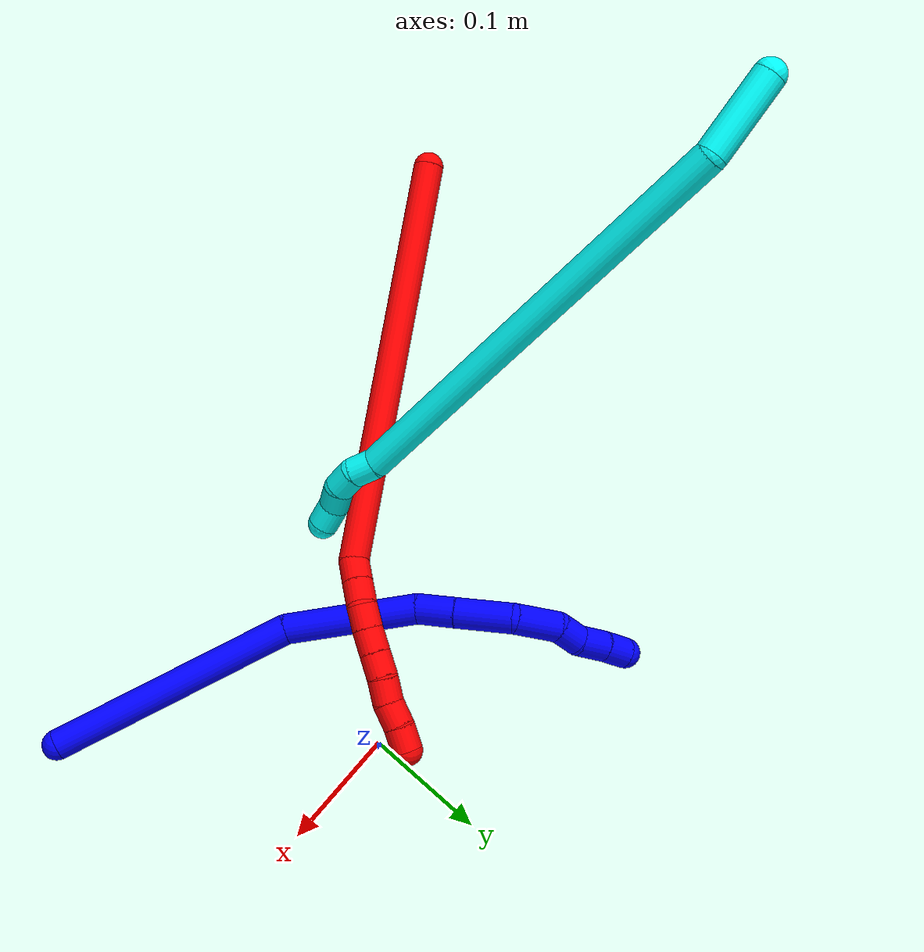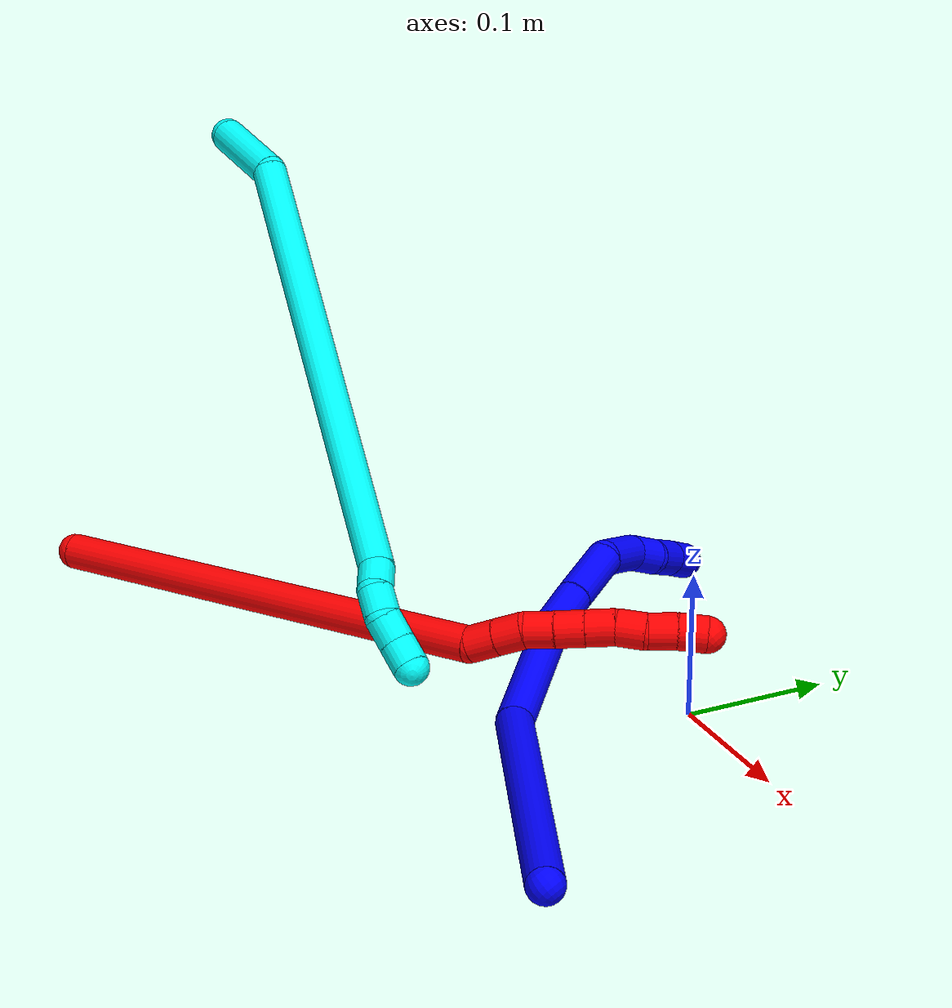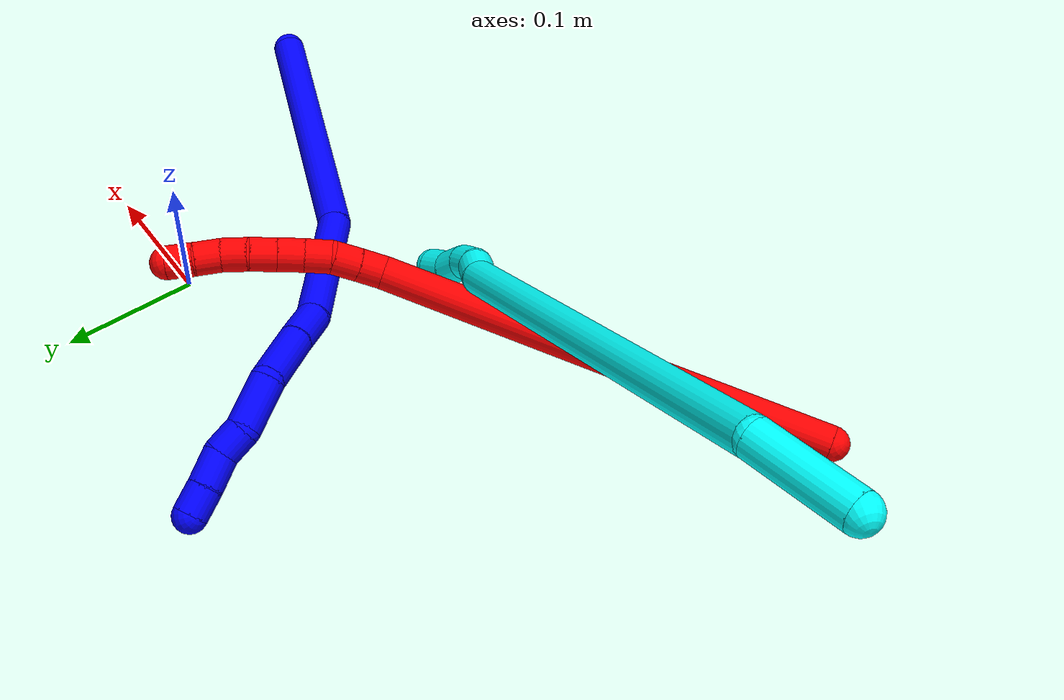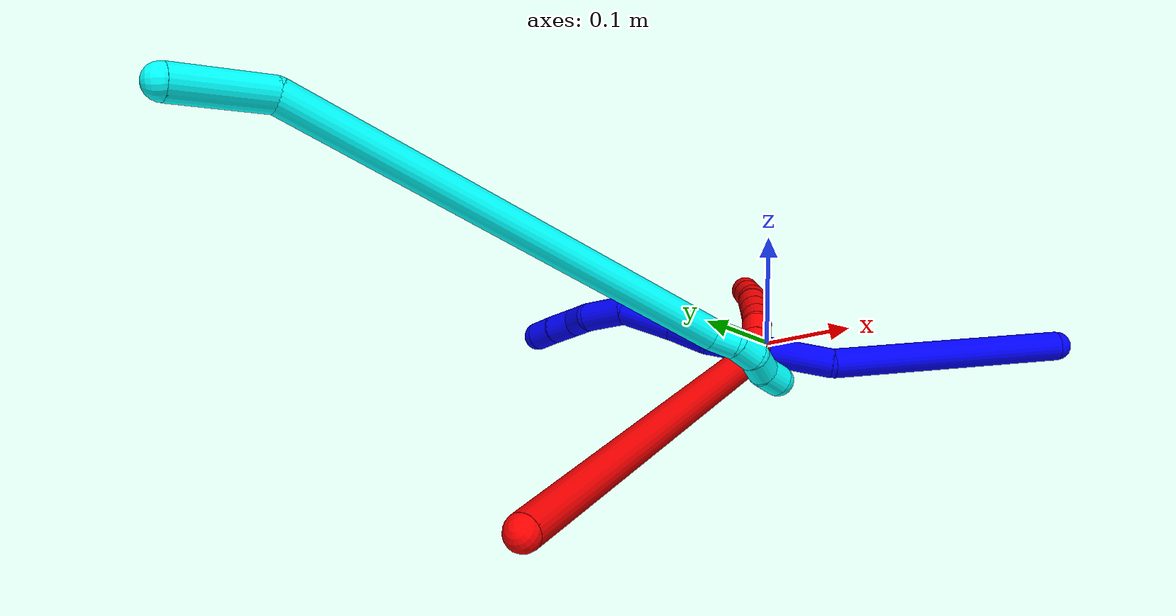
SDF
<sdf version="1.7">
 <world name="default">
  <plugin name="TubeGeneratorPlugin" filename="libtube_generator_plugin.so"/>
  <model name="photoneo_s_sensor">
   <static>1</static>
   <pose>0 0 2 1.57079 1.57079 3.14159</pose>
   <link name="link">
    <inertial><mass>0.1</mass></inertial>
    <sensor name="sensor" type="depth">
     <update_rate>30</update_rate>
     <camera>
      <horizontal_fov>1.22</horizontal_fov>
      <image><width>1920</width><height>1200</height><format>B8G8R8</format></image>
      <clip><near>0.1</near><far>4</far></clip>
      <depth_camera><output>points</output></depth_camera>
     </camera>
     <plugin name="camera_plugin" filename="libgazebo_ros_depth_camera.so">
      <baseline>0.2</baseline>
      <alwaysOn>1</alwaysOn>
      <updateRate>0.0</updateRate>
      <cameraName>camera_ir</cameraName>
      <imageTopicName>/camera/color/image_raw</imageTopicName>
      <cameraInfoTopicName>/camera/color/camera_info</cameraInfoTopicName>
      <depthImageTopicName>/camera/depth/image_raw</depthImageTopicName>
      <depthImageCameraInfoTopicName>/camera/depth/camera_info</depthImageCameraInfoTopicName>
      <pointCloudTopicName>/camera/depth/points</pointCloudTopicName>
      <frameName>fr_optical</frameName>
      <pointCloudCutoff>0.1</pointCloudCutoff>
      <pointCloudCutoffMax>2.0</pointCloudCutoffMax>
      <distortionK1>0</distortionK1>
      <distortionK2>0</distortionK2>
      <distortionK3>0</distortionK3>
      <distortionT1>0</distortionT1>
      <distortionT2>0</distortionT2>
      <CxPrime>0</CxPrime>
      <Cx>0</Cx>
      <Cy>0</Cy>
      <focalLength>0</focalLength>
      <hackBaseline>0</hackBaseline>
     </plugin>
    </sensor>
   </link>
  </model>
  <gravity>0 0 -9.8</gravity>
  <magnetic_field>6e-06 2.3e-05 -4.2e-05</magnetic_field>
  <atmosphere type="adiabatic"/>
  <physics name="default_physics" default="0" type="ode">
   <max_step_size>0.003</max_step_size>
   <real_time_factor>1</real_time_factor>
   <real_time_update_rate>1000</real_time_update_rate>
   <max_contacts>10000</max_contacts>
   <ode>
    <solver>
     <type>quick</type>
     <iters>100</iters>
     <sor>1.3</sor>
     <use_dynamic_moi_rescaling>0</use_dynamic_moi_rescaling>
    </solver>
    <constraints>
     <contact_max_correcting_vel>0</contact_max_correcting_vel>
     <contact_surface_layer>0.001</contact_surface_layer>
     <cfm>0</cfm>
     <erp>0.2</erp>
    </constraints>
   </ode>
  </physics>
  <scene><ambient>0.4 0.4 0.4 1</ambient><background>0.7 0.7 0.7 1</background><shadows>0</shadows></scene>
  <audio><device>default</device></audio>
  <spherical_coordinates>
   <surface_model>EARTH_WGS84</surface_model>
   <latitude_deg>0</latitude_deg>
   <longitude_deg>0</longitude_deg>
   <elevation>0</elevation>
   <heading_deg>0</heading_deg>
  </spherical_coordinates>
  <model name="bin">
   <static>1</static>
   <link name="bottom">
    <collision name="collision-bottom">
     <pose>0 0 -0.01 0 -0 0</pose>
     <geometry><box><size>0.8 0.6 0.02</size></box></geometry>
     <surface>
      <friction><ode><mu>100</mu><mu2>100</mu2></ode></friction>
      <contact><collide_bitmask>65535</collide_bitmask></contact>
     </surface>
    </collision>
   </link>
   <link name="west_wall">
    <collision name="collision-west_wall">
     <pose>-0.41 0 0.1 0 -0 0</pose>
     <geometry><box><size>0.02 0.6 0.2</size></box></geometry>
     <surface>
      <friction><ode><mu>100</mu><mu2>100</mu2></ode></friction>
      <contact><collide_bitmask>65535</collide_bitmask></contact>
     </surface>
    </collision>
   </link>
   <link name="east_wall">
    <collision name="collision-east_wall">
     <pose>0.41 0 0.1 0 -0 0</pose>
     <geometry><box><size>0.02 0.6 0.2</size></box></geometry>
     <surface>
      <friction><ode><mu>100</mu><mu2>100</mu2></ode></friction>
      <contact><collide_bitmask>65535</collide_bitmask></contact>
     </surface>
    </collision>
   </link>
   <link name="south_wall">
    <collision name="collision-south_wall">
     <pose>0 -0.31 0.1 0 -0 0</pose>
     <geometry><box><size>0.8 0.02 0.2</size></box></geometry>
     <surface>
      <friction><ode><mu>100</mu><mu2>100</mu2></ode></friction>
      <contact><collide_bitmask>65535</collide_bitmask></contact>
     </surface>
    </collision>
   </link>
   <link name="north_wall">
    <collision name="collision-north_wall">
     <pose>0 0.31 0.1 0 -0 0</pose>
     <geometry><box><size>0.8 0.02 0.2</size></box></geometry>
     <surface>
      <friction><ode><mu>100</mu><mu2>100</mu2></ode></friction>
      <contact><collide_bitmask>65535</collide_bitmask></contact>
     </surface>
    </collision>
   </link>
  </model>
  <model name="1">
   <static>0</static>
   <link name="1">
    <collision name="collision-cylinder-e_1_1_4">
     <pose>-0.08217 0.041024 0.046794 -0.719787 -0.922612 0.369808</pose>
     <geometry><cylinder><radius>0.0125</radius><length>0.206151</length></cylinder></geometry>
     <surface>
      <friction><ode><mu>1.16</mu><mu2>1.16</mu2><slip1>0</slip1><slip2>0</slip2></ode></friction>
      <contact><ode><kp>1e+06</kp><kd>1</kd><max_vel>0</max_vel><min_depth>0.001</min_depth></ode></contact>
     </surface>
    </collision>
    <visual name="visual-cylinder-e_1_1_4">
     <pose>-0.08217 0.041024 0.046794 -0.719787 -0.922612 0.369808</pose>
     <geometry><cylinder><radius>0.0125</radius><length>0.206151</length></cylinder></geometry>
     <material><ambient>0 0 1 1</ambient></material>
    </visual>
    <collision name="collision-cylinder-e_2_4_5">
     <pose>-0.198238 0.120527 0.11332 -1.09696 -0.664848 0.415794</pose>
     <geometry><cylinder><radius>0.0125</radius><length>0.109892</length></cylinder></geometry>
     <surface>
      <friction><ode><mu>1.16</mu><mu2>1.16</mu2><slip1>0</slip1><slip2>0</slip2></ode></friction>
      <contact><ode><kp>1e+06</kp><kd>1</kd><max_vel>0</max_vel><min_depth>0.001</min_depth></ode></contact>
     </surface>
    </collision>
    <visual name="visual-cylinder-e_2_4_5">
     <pose>-0.198238 0.120527 0.11332 -1.09696 -0.664848 0.415794</pose>
     <geometry><cylinder><radius>0.0125</radius><length>0.109892</length></cylinder></geometry>
     <material><ambient>0 0 1 1</ambient></material>
    </visual>
    <collision name="collision-cylinder-e_3_5_6">
     <pose>-0.238929 0.172947 0.136931 -1.29941 -0.438865 0.335691</pose>
     <geometry><cylinder><radius>0.0125</radius><length>0.031972</length></cylinder></geometry>
     <surface>
      <friction><ode><mu>1.16</mu><mu2>1.16</mu2><slip1>0</slip1><slip2>0</slip2></ode></friction>
      <contact><ode><kp>1e+06</kp><kd>1</kd><max_vel>0</max_vel><min_depth>0.001</min_depth></ode></contact>
     </surface>
    </collision>
    <visual name="visual-cylinder-e_3_5_6">
     <pose>-0.238929 0.172947 0.136931 -1.29941 -0.438865 0.335691</pose>
     <geometry><cylinder><radius>0.0125</radius><length>0.031972</length></cylinder></geometry>
     <material><ambient>0 0 1 1</ambient></material>
    </visual>
    <collision name="collision-cylinder-e_4_6_7">
     <pose>-0.256749 0.206988 0.145868 -1.32429 -0.488971 0.384163</pose>
     <geometry><cylinder><radius>0.0125</radius><length>0.046955</length></cylinder></geometry>
     <surface>
      <friction><ode><mu>1.16</mu><mu2>1.16</mu2><slip1>0</slip1><slip2>0</slip2></ode></friction>
      <contact><ode><kp>1e+06</kp><kd>1</kd><max_vel>0</max_vel><min_depth>0.001</min_depth></ode></contact>
     </surface>
    </collision>
    <visual name="visual-cylinder-e_4_6_7">
     <pose>-0.256749 0.206988 0.145868 -1.32429 -0.488971 0.384163</pose>
     <geometry><cylinder><radius>0.0125</radius><length>0.046955</length></cylinder></geometry>
     <material><ambient>0 0 1 1</ambient></material>
    </visual>
    <collision name="collision-cylinder-e_5_7_8">
     <pose>-0.281722 0.239792 0.147899 -1.80468 -0.818156 1.00408</pose>
     <geometry><cylinder><radius>0.0125</radius><length>0.038211</length></cylinder></geometry>
     <surface>
      <friction><ode><mu>1.16</mu><mu2>1.16</mu2><slip1>0</slip1><slip2>0</slip2></ode></friction>
      <contact><ode><kp>1e+06</kp><kd>1</kd><max_vel>0</max_vel><min_depth>0.001</min_depth></ode></contact>
     </surface>
    </collision>
    <visual name="visual-cylinder-e_5_7_8">
     <pose>-0.281722 0.239792 0.147899 -1.80468 -0.818156 1.00408</pose>
     <geometry><cylinder><radius>0.0125</radius><length>0.038211</length></cylinder></geometry>
     <material><ambient>0 0 1 1</ambient></material>
    </visual>
    <collision name="collision-cylinder-e_6_8_9">
     <pose>-0.301549 0.259574 0.139515 -2.2187 -0.585205 1.08939</pose>
     <geometry><cylinder><radius>0.0125</radius><length>0.021298</length></cylinder></geometry>
     <surface>
      <friction><ode><mu>1.16</mu><mu2>1.16</mu2><slip1>0</slip1><slip2>0</slip2></ode></friction>
      <contact><ode><kp>1e+06</kp><kd>1</kd><max_vel>0</max_vel><min_depth>0.001</min_depth></ode></contact>
     </surface>
    </collision>
    <visual name="visual-cylinder-e_6_8_9">
     <pose>-0.301549 0.259574 0.139515 -2.2187 -0.585205 1.08939</pose>
     <geometry><cylinder><radius>0.0125</radius><length>0.021298</length></cylinder></geometry>
     <material><ambient>0 0 1 1</ambient></material>
    </visual>
    <collision name="collision-cylinder-e_7_9_10">
     <pose>-0.316824 0.273809 0.130965 -1.99043 -0.875473 1.24973</pose>
     <geometry><cylinder><radius>0.0125</radius><length>0.024466</length></cylinder></geometry>
     <surface>
      <friction><ode><mu>1.16</mu><mu2>1.16</mu2><slip1>0</slip1><slip2>0</slip2></ode></friction>
      <contact><ode><kp>1e+06</kp><kd>1</kd><max_vel>0</max_vel><min_depth>0.001</min_depth></ode></contact>
     </surface>
    </collision>
    <visual name="visual-cylinder-e_7_9_10">
     <pose>-0.316824 0.273809 0.130965 -1.99043 -0.875473 1.24973</pose>
     <geometry><cylinder><radius>0.0125</radius><length>0.024466</length></cylinder></geometry>
     <material><ambient>0 0 1 1</ambient></material>
    </visual>
    <collision name="collision-cylinder-e_8_10_2">
     <pose>-0.33399 0.287126 0.12424 -2.09135 -0.830587 1.30107</pose>
     <geometry><cylinder><radius>0.0125</radius><length>0.021056</length></cylinder></geometry>
     <surface>
      <friction><ode><mu>1.16</mu><mu2>1.16</mu2><slip1>0</slip1><slip2>0</slip2></ode></friction>
      <contact><ode><kp>1e+06</kp><kd>1</kd><max_vel>0</max_vel><min_depth>0.001</min_depth></ode></contact>
     </surface>
    </collision>
    <visual name="visual-cylinder-e_8_10_2">
     <pose>-0.33399 0.287126 0.12424 -2.09135 -0.830587 1.30107</pose>
     <geometry><cylinder><radius>0.0125</radius><length>0.021056</length></cylinder></geometry>
     <material><ambient>0 0 1 1</ambient></material>
    </visual>
    <collision name="collision-sphere-2">
     <pose>-0.341763 0.293286 0.120709 0 -0 0</pose>
     <geometry><sphere><radius>0.0125</radius></sphere></geometry>
     <surface>
      <friction><ode><mu>1.16</mu><mu2>1.16</mu2><slip1>0</slip1><slip2>0</slip2></ode></friction>
      <contact><ode><kp>1e+06</kp><kd>1</kd><max_vel>0</max_vel><min_depth>0.001</min_depth></ode></contact>
     </surface>
    </collision>
    <visual name="visual-sphere-2">
     <pose>-0.341763 0.293286 0.120709 0 -0 0</pose>
     <geometry><sphere><radius>0.0125</radius></sphere></geometry>
     <material><ambient>0 0 1 1</ambient></material>
    </visual>
    <collision name="collision-sphere-10">
     <pose>-0.326217 0.280966 0.127772 0 -0 0</pose>
     <geometry><sphere><radius>0.0125</radius></sphere></geometry>
     <surface>
      <friction><ode><mu>1.16</mu><mu2>1.16</mu2><slip1>0</slip1><slip2>0</slip2></ode></friction>
      <contact><ode><kp>1e+06</kp><kd>1</kd><max_vel>0</max_vel><min_depth>0.001</min_depth></ode></contact>
     </surface>
    </collision>
    <visual name="visual-sphere-10">
     <pose>-0.326217 0.280966 0.127772 0 -0 0</pose>
     <geometry><sphere><radius>0.0125</radius></sphere></geometry>
     <material><ambient>0 0 1 1</ambient></material>
    </visual>
    <collision name="collision-sphere-9">
     <pose>-0.307431 0.266652 0.134157 0 -0 0</pose>
     <geometry><sphere><radius>0.0125</radius></sphere></geometry>
     <surface>
      <friction><ode><mu>1.16</mu><mu2>1.16</mu2><slip1>0</slip1><slip2>0</slip2></ode></friction>
      <contact><ode><kp>1e+06</kp><kd>1</kd><max_vel>0</max_vel><min_depth>0.001</min_depth></ode></contact>
     </surface>
    </collision>
    <visual name="visual-sphere-9">
     <pose>-0.307431 0.266652 0.134157 0 -0 0</pose>
     <geometry><sphere><radius>0.0125</radius></sphere></geometry>
     <material><ambient>0 0 1 1</ambient></material>
    </visual>
    <collision name="collision-sphere-4">
     <pose>-0.16434 0.082048 0.093589 0 -0 0</pose>
     <geometry><sphere><radius>0.0125</radius></sphere></geometry>
     <surface>
      <friction><ode><mu>1.16</mu><mu2>1.16</mu2><slip1>0</slip1><slip2>0</slip2></ode></friction>
      <contact><ode><kp>1e+06</kp><kd>1</kd><max_vel>0</max_vel><min_depth>0.001</min_depth></ode></contact>
     </surface>
    </collision>
    <visual name="visual-sphere-4">
     <pose>-0.16434 0.082048 0.093589 0 -0 0</pose>
     <geometry><sphere><radius>0.0125</radius></sphere></geometry>
     <material><ambient>0 0 1 1</ambient></material>
    </visual>
    <collision name="collision-sphere-1">
     <geometry><sphere><radius>0.0125</radius></sphere></geometry>
     <surface>
      <friction><ode><mu>1.16</mu><mu2>1.16</mu2><slip1>0</slip1><slip2>0</slip2></ode></friction>
      <contact><ode><kp>1e+06</kp><kd>1</kd><max_vel>0</max_vel><min_depth>0.001</min_depth></ode></contact>
     </surface>
    </collision>
    <visual name="visual-sphere-1">
     <geometry><sphere><radius>0.0125</radius></sphere></geometry>
     <material><ambient>0 0 1 1</ambient></material>
    </visual>
    <collision name="collision-sphere-8">
     <pose>-0.295667 0.252496 0.144872 0 -0 0</pose>
     <geometry><sphere><radius>0.0125</radius></sphere></geometry>
     <surface>
      <friction><ode><mu>1.16</mu><mu2>1.16</mu2><slip1>0</slip1><slip2>0</slip2></ode></friction>
      <contact><ode><kp>1e+06</kp><kd>1</kd><max_vel>0</max_vel><min_depth>0.001</min_depth></ode></contact>
     </surface>
    </collision>
    <visual name="visual-sphere-8">
     <pose>-0.295667 0.252496 0.144872 0 -0 0</pose>
     <geometry><sphere><radius>0.0125</radius></sphere></geometry>
     <material><ambient>0 0 1 1</ambient></material>
    </visual>
    <collision name="collision-sphere-5">
     <pose>-0.232136 0.159006 0.133052 0 -0 0</pose>
     <geometry><sphere><radius>0.0125</radius></sphere></geometry>
     <surface>
      <friction><ode><mu>1.16</mu><mu2>1.16</mu2><slip1>0</slip1><slip2>0</slip2></ode></friction>
      <contact><ode><kp>1e+06</kp><kd>1</kd><max_vel>0</max_vel><min_depth>0.001</min_depth></ode></contact>
     </surface>
    </collision>
    <visual name="visual-sphere-5">
     <pose>-0.232136 0.159006 0.133052 0 -0 0</pose>
     <geometry><sphere><radius>0.0125</radius></sphere></geometry>
     <material><ambient>0 0 1 1</ambient></material>
    </visual>
    <collision name="collision-sphere-6">
     <pose>-0.245721 0.186888 0.14081 0 -0 0</pose>
     <geometry><sphere><radius>0.0125</radius></sphere></geometry>
     <surface>
      <friction><ode><mu>1.16</mu><mu2>1.16</mu2><slip1>0</slip1><slip2>0</slip2></ode></friction>
      <contact><ode><kp>1e+06</kp><kd>1</kd><max_vel>0</max_vel><min_depth>0.001</min_depth></ode></contact>
     </surface>
    </collision>
    <visual name="visual-sphere-6">
     <pose>-0.245721 0.186888 0.14081 0 -0 0</pose>
     <geometry><sphere><radius>0.0125</radius></sphere></geometry>
     <material><ambient>0 0 1 1</ambient></material>
    </visual>
    <collision name="collision-sphere-7">
     <pose>-0.267777 0.227088 0.150926 0 -0 0</pose>
     <geometry><sphere><radius>0.0125</radius></sphere></geometry>
     <surface>
      <friction><ode><mu>1.16</mu><mu2>1.16</mu2><slip1>0</slip1><slip2>0</slip2></ode></friction>
      <contact><ode><kp>1e+06</kp><kd>1</kd><max_vel>0</max_vel><min_depth>0.001</min_depth></ode></contact>
     </surface>
    </collision>
    <visual name="visual-sphere-7">
     <pose>-0.267777 0.227088 0.150926 0 -0 0</pose>
     <geometry><sphere><radius>0.0125</radius></sphere></geometry>
     <material><ambient>0 0 1 1</ambient></material>
    </visual>
    <inertial>
     <pose>-0.18078 0.128773 0.095539 0 -0 0</pose>
     <mass>0.5</mass>
     <inertia>
      <ixx>0.000696</ixx>
      <ixy>0</ixy>
      <ixz>0</ixz>
      <iyy>0.000974</iyy>
      <iyz>0</iyz>
      <izz>0.00029</izz>
     </inertia>
    </inertial>
   </link>
   <pose>0.17225 -0.194441 0.0153 0.578734 -0.661907 -0.294884</pose>
  </model>
  <model name="2">
   <static>0</static>
   <link name="2">
    <collision name="collision-cylinder-e_1_1_4">
     <pose>0.10442 0.050529 -0.124243 -2.75533 0.66151 -2.10613</pose>
     <geometry><cylinder><radius>0.0125</radius><length>0.33996</length></cylinder></geometry>
     <surface>
      <friction><ode><mu>1.16</mu><mu2>1.16</mu2><slip1>0</slip1><slip2>0</slip2></ode></friction>
      <contact><ode><kp>1e+06</kp><kd>1</kd><max_vel>0</max_vel><min_depth>0.001</min_depth></ode></contact>
     </surface>
    </collision>
    <visual name="visual-cylinder-e_1_1_4">
     <pose>0.10442 0.050529 -0.124243 -2.75533 0.66151 -2.10613</pose>
     <geometry><cylinder><radius>0.0125</radius><length>0.33996</length></cylinder></geometry>
     <material><ambient>1 0 0 1</ambient></material>
    </visual>
    <collision name="collision-cylinder-e_2_4_5">
     <pose>0.214881 0.107752 -0.252828 -2.14608 0.647938 -1.10705</pose>
     <geometry><cylinder><radius>0.0125</radius><length>0.020016</length></cylinder></geometry>
     <surface>
      <friction><ode><mu>1.16</mu><mu2>1.16</mu2><slip1>0</slip1><slip2>0</slip2></ode></friction>
      <contact><ode><kp>1e+06</kp><kd>1</kd><max_vel>0</max_vel><min_depth>0.001</min_depth></ode></contact>
     </surface>
    </collision>
    <visual name="visual-cylinder-e_2_4_5">
     <pose>0.214881 0.107752 -0.252828 -2.14608 0.647938 -1.10705</pose>
     <geometry><cylinder><radius>0.0125</radius><length>0.020016</length></cylinder></geometry>
     <material><ambient>1 0 0 1</ambient></material>
    </visual>
    <collision name="collision-cylinder-e_3_5_6">
     <pose>0.226832 0.121197 -0.261609 -2.15263 0.631689 -1.08979</pose>
     <geometry><cylinder><radius>0.0125</radius><length>0.02002</length></cylinder></geometry>
     <surface>
      <friction><ode><mu>1.16</mu><mu2>1.16</mu2><slip1>0</slip1><slip2>0</slip2></ode></friction>
      <contact><ode><kp>1e+06</kp><kd>1</kd><max_vel>0</max_vel><min_depth>0.001</min_depth></ode></contact>
     </surface>
    </collision>
    <visual name="visual-cylinder-e_3_5_6">
     <pose>0.226832 0.121197 -0.261609 -2.15263 0.631689 -1.08979</pose>
     <geometry><cylinder><radius>0.0125</radius><length>0.02002</length></cylinder></geometry>
     <material><ambient>1 0 0 1</ambient></material>
    </visual>
    <collision name="collision-cylinder-e_4_6_7">
     <pose>0.236731 0.134431 -0.272535 -2.35625 0.410148 -0.930801</pose>
     <geometry><cylinder><radius>0.0125</radius><length>0.020003</length></cylinder></geometry>
     <surface>
      <friction><ode><mu>1.16</mu><mu2>1.16</mu2><slip1>0</slip1><slip2>0</slip2></ode></friction>
      <contact><ode><kp>1e+06</kp><kd>1</kd><max_vel>0</max_vel><min_depth>0.001</min_depth></ode></contact>
     </surface>
    </collision>
    <visual name="visual-cylinder-e_4_6_7">
     <pose>0.236731 0.134431 -0.272535 -2.35625 0.410148 -0.930801</pose>
     <geometry><cylinder><radius>0.0125</radius><length>0.020003</length></cylinder></geometry>
     <material><ambient>1 0 0 1</ambient></material>
    </visual>
    <collision name="collision-cylinder-e_5_7_8">
     <pose>0.244394 0.147831 -0.285242 -2.30343 0.376343 -0.807919</pose>
     <geometry><cylinder><radius>0.0125</radius><length>0.02</length></cylinder></geometry>
     <surface>
      <friction><ode><mu>1.16</mu><mu2>1.16</mu2><slip1>0</slip1><slip2>0</slip2></ode></friction>
      <contact><ode><kp>1e+06</kp><kd>1</kd><max_vel>0</max_vel><min_depth>0.001</min_depth></ode></contact>
     </surface>
    </collision>
    <visual name="visual-cylinder-e_5_7_8">
     <pose>0.244394 0.147831 -0.285242 -2.30343 0.376343 -0.807919</pose>
     <geometry><cylinder><radius>0.0125</radius><length>0.02</length></cylinder></geometry>
     <material><ambient>1 0 0 1</ambient></material>
    </visual>
    <collision name="collision-cylinder-e_6_8_9">
     <pose>0.251638 0.161665 -0.297737 -2.30732 0.364887 -0.789015</pose>
     <geometry><cylinder><radius>0.0125</radius><length>0.020001</length></cylinder></geometry>
     <surface>
      <friction><ode><mu>1.16</mu><mu2>1.16</mu2><slip1>0</slip1><slip2>0</slip2></ode></friction>
      <contact><ode><kp>1e+06</kp><kd>1</kd><max_vel>0</max_vel><min_depth>0.001</min_depth></ode></contact>
     </surface>
    </collision>
    <visual name="visual-cylinder-e_6_8_9">
     <pose>0.251638 0.161665 -0.297737 -2.30732 0.364887 -0.789015</pose>
     <geometry><cylinder><radius>0.0125</radius><length>0.020001</length></cylinder></geometry>
     <material><ambient>1 0 0 1</ambient></material>
    </visual>
    <collision name="collision-cylinder-e_7_9_10">
     <pose>0.258233 0.174359 -0.311595 -2.49087 0.307448 -0.861131</pose>
     <geometry><cylinder><radius>0.0125</radius><length>0.02</length></cylinder></geometry>
     <surface>
      <friction><ode><mu>1.16</mu><mu2>1.16</mu2><slip1>0</slip1><slip2>0</slip2></ode></friction>
      <contact><ode><kp>1e+06</kp><kd>1</kd><max_vel>0</max_vel><min_depth>0.001</min_depth></ode></contact>
     </surface>
    </collision>
    <visual name="visual-cylinder-e_7_9_10">
     <pose>0.258233 0.174359 -0.311595 -2.49087 0.307448 -0.861131</pose>
     <geometry><cylinder><radius>0.0125</radius><length>0.02</length></cylinder></geometry>
     <material><ambient>1 0 0 1</ambient></material>
    </visual>
    <collision name="collision-cylinder-e_8_10_11">
     <pose>0.263245 0.187548 -0.325588 -2.28358 0.199904 -0.431658</pose>
     <geometry><cylinder><radius>0.0125</radius><length>0.02</length></cylinder></geometry>
     <surface>
      <friction><ode><mu>1.16</mu><mu2>1.16</mu2><slip1>0</slip1><slip2>0</slip2></ode></friction>
      <contact><ode><kp>1e+06</kp><kd>1</kd><max_vel>0</max_vel><min_depth>0.001</min_depth></ode></contact>
     </surface>
    </collision>
    <visual name="visual-cylinder-e_8_10_11">
     <pose>0.263245 0.187548 -0.325588 -2.28358 0.199904 -0.431658</pose>
     <geometry><cylinder><radius>0.0125</radius><length>0.02</length></cylinder></geometry>
     <material><ambient>1 0 0 1</ambient></material>
    </visual>
    <collision name="collision-cylinder-e_9_11_2">
     <pose>0.267431 0.201378 -0.339346 -2.42388 0.221802 -0.577177</pose>
     <geometry><cylinder><radius>0.0125</radius><length>0.02</length></cylinder></geometry>
     <surface>
      <friction><ode><mu>1.16</mu><mu2>1.16</mu2><slip1>0</slip1><slip2>0</slip2></ode></friction>
      <contact><ode><kp>1e+06</kp><kd>1</kd><max_vel>0</max_vel><min_depth>0.001</min_depth></ode></contact>
     </surface>
    </collision>
    <visual name="visual-cylinder-e_9_11_2">
     <pose>0.267431 0.201378 -0.339346 -2.42388 0.221802 -0.577177</pose>
     <geometry><cylinder><radius>0.0125</radius><length>0.02</length></cylinder></geometry>
     <material><ambient>1 0 0 1</ambient></material>
    </visual>
    <collision name="collision-sphere-2">
     <pose>0.269631 0.207793 -0.346694 0 -0 0</pose>
     <geometry><sphere><radius>0.0125</radius></sphere></geometry>
     <surface>
      <friction><ode><mu>1.16</mu><mu2>1.16</mu2><slip1>0</slip1><slip2>0</slip2></ode></friction>
      <contact><ode><kp>1e+06</kp><kd>1</kd><max_vel>0</max_vel><min_depth>0.001</min_depth></ode></contact>
     </surface>
    </collision>
    <visual name="visual-sphere-2">
     <pose>0.269631 0.207793 -0.346694 0 -0 0</pose>
     <geometry><sphere><radius>0.0125</radius></sphere></geometry>
     <material><ambient>1 0 0 1</ambient></material>
    </visual>
    <collision name="collision-sphere-11">
     <pose>0.265231 0.194962 -0.331997 0 -0 0</pose>
     <geometry><sphere><radius>0.0125</radius></sphere></geometry>
     <surface>
      <friction><ode><mu>1.16</mu><mu2>1.16</mu2><slip1>0</slip1><slip2>0</slip2></ode></friction>
      <contact><ode><kp>1e+06</kp><kd>1</kd><max_vel>0</max_vel><min_depth>0.001</min_depth></ode></contact>
     </surface>
    </collision>
    <visual name="visual-sphere-11">
     <pose>0.265231 0.194962 -0.331997 0 -0 0</pose>
     <geometry><sphere><radius>0.0125</radius></sphere></geometry>
     <material><ambient>1 0 0 1</ambient></material>
    </visual>
    <collision name="collision-sphere-10">
     <pose>0.261259 0.180133 -0.319179 0 -0 0</pose>
     <geometry><sphere><radius>0.0125</radius></sphere></geometry>
     <surface>
      <friction><ode><mu>1.16</mu><mu2>1.16</mu2><slip1>0</slip1><slip2>0</slip2></ode></friction>
      <contact><ode><kp>1e+06</kp><kd>1</kd><max_vel>0</max_vel><min_depth>0.001</min_depth></ode></contact>
     </surface>
    </collision>
    <visual name="visual-sphere-10">
     <pose>0.261259 0.180133 -0.319179 0 -0 0</pose>
     <geometry><sphere><radius>0.0125</radius></sphere></geometry>
     <material><ambient>1 0 0 1</ambient></material>
    </visual>
    <collision name="collision-sphere-9">
     <pose>0.255207 0.168586 -0.304012 0 -0 0</pose>
     <geometry><sphere><radius>0.0125</radius></sphere></geometry>
     <surface>
      <friction><ode><mu>1.16</mu><mu2>1.16</mu2><slip1>0</slip1><slip2>0</slip2></ode></friction>
      <contact><ode><kp>1e+06</kp><kd>1</kd><max_vel>0</max_vel><min_depth>0.001</min_depth></ode></contact>
     </surface>
    </collision>
    <visual name="visual-sphere-9">
     <pose>0.255207 0.168586 -0.304012 0 -0 0</pose>
     <geometry><sphere><radius>0.0125</radius></sphere></geometry>
     <material><ambient>1 0 0 1</ambient></material>
    </visual>
    <collision name="collision-sphere-4">
     <pose>0.20884 0.101057 -0.248487 0 -0 0</pose>
     <geometry><sphere><radius>0.0125</radius></sphere></geometry>
     <surface>
      <friction><ode><mu>1.16</mu><mu2>1.16</mu2><slip1>0</slip1><slip2>0</slip2></ode></friction>
      <contact><ode><kp>1e+06</kp><kd>1</kd><max_vel>0</max_vel><min_depth>0.001</min_depth></ode></contact>
     </surface>
    </collision>
    <visual name="visual-sphere-4">
     <pose>0.20884 0.101057 -0.248487 0 -0 0</pose>
     <geometry><sphere><radius>0.0125</radius></sphere></geometry>
     <material><ambient>1 0 0 1</ambient></material>
    </visual>
    <collision name="collision-sphere-1">
     <geometry><sphere><radius>0.0125</radius></sphere></geometry>
     <surface>
      <friction><ode><mu>1.16</mu><mu2>1.16</mu2><slip1>0</slip1><slip2>0</slip2></ode></friction>
      <contact><ode><kp>1e+06</kp><kd>1</kd><max_vel>0</max_vel><min_depth>0.001</min_depth></ode></contact>
     </surface>
    </collision>
    <visual name="visual-sphere-1">
     <geometry><sphere><radius>0.0125</radius></sphere></geometry>
     <material><ambient>1 0 0 1</ambient></material>
    </visual>
    <collision name="collision-sphere-8">
     <pose>0.24807 0.154744 -0.291462 0 -0 0</pose>
     <geometry><sphere><radius>0.0125</radius></sphere></geometry>
     <surface>
      <friction><ode><mu>1.16</mu><mu2>1.16</mu2><slip1>0</slip1><slip2>0</slip2></ode></friction>
      <contact><ode><kp>1e+06</kp><kd>1</kd><max_vel>0</max_vel><min_depth>0.001</min_depth></ode></contact>
     </surface>
    </collision>
    <visual name="visual-sphere-8">
     <pose>0.24807 0.154744 -0.291462 0 -0 0</pose>
     <geometry><sphere><radius>0.0125</radius></sphere></geometry>
     <material><ambient>1 0 0 1</ambient></material>
    </visual>
    <collision name="collision-sphere-5">
     <pose>0.220921 0.114448 -0.25717 0 -0 0</pose>
     <geometry><sphere><radius>0.0125</radius></sphere></geometry>
     <surface>
      <friction><ode><mu>1.16</mu><mu2>1.16</mu2><slip1>0</slip1><slip2>0</slip2></ode></friction>
      <contact><ode><kp>1e+06</kp><kd>1</kd><max_vel>0</max_vel><min_depth>0.001</min_depth></ode></contact>
     </surface>
    </collision>
    <visual name="visual-sphere-5">
     <pose>0.220921 0.114448 -0.25717 0 -0 0</pose>
     <geometry><sphere><radius>0.0125</radius></sphere></geometry>
     <material><ambient>1 0 0 1</ambient></material>
    </visual>
    <collision name="collision-sphere-6">
     <pose>0.232743 0.127946 -0.266049 0 -0 0</pose>
     <geometry><sphere><radius>0.0125</radius></sphere></geometry>
     <surface>
      <friction><ode><mu>1.16</mu><mu2>1.16</mu2><slip1>0</slip1><slip2>0</slip2></ode></friction>
      <contact><ode><kp>1e+06</kp><kd>1</kd><max_vel>0</max_vel><min_depth>0.001</min_depth></ode></contact>
     </surface>
    </collision>
    <visual name="visual-sphere-6">
     <pose>0.232743 0.127946 -0.266049 0 -0 0</pose>
     <geometry><sphere><radius>0.0125</radius></sphere></geometry>
     <material><ambient>1 0 0 1</ambient></material>
    </visual>
    <collision name="collision-sphere-7">
     <pose>0.240719 0.140917 -0.279021 0 -0 0</pose>
     <geometry><sphere><radius>0.0125</radius></sphere></geometry>
     <surface>
      <friction><ode><mu>1.16</mu><mu2>1.16</mu2><slip1>0</slip1><slip2>0</slip2></ode></friction>
      <contact><ode><kp>1e+06</kp><kd>1</kd><max_vel>0</max_vel><min_depth>0.001</min_depth></ode></contact>
     </surface>
    </collision>
    <visual name="visual-sphere-7">
     <pose>0.240719 0.140917 -0.279021 0 -0 0</pose>
     <geometry><sphere><radius>0.0125</radius></sphere></geometry>
     <material><ambient>1 0 0 1</ambient></material>
    </visual>
    <inertial>
     <pose>0.149551 0.083811 -0.178356 0 -0 0</pose>
     <mass>0.5</mass>
     <inertia>
      <ixx>-0.003534</ixx>
      <ixy>0</ixy>
      <ixz>0</ixz>
      <iyy>-1.7e-05</iyy>
      <iyz>0</iyz>
      <izz>-0.003036</izz>
     </inertia>
    </inertial>
   </link>
   <pose>-0.388501 -0.286133 0.011604 0.520782 -0.741955 -0.133765</pose>
  </model>
  <model name="3">
   <static>0</static>
   <link name="3">
    <collision name="collision-cylinder-e_1_1_4">
     <pose>0.002012 -0.015571 -0.029695 2.65864 0.059949 0.242294</pose>
     <geometry><cylinder><radius>0.0125</radius><length>0.06718</length></cylinder></geometry>
     <surface>
      <friction><ode><mu>1.16</mu><mu2>1.16</mu2><slip1>0</slip1><slip2>0</slip2></ode></friction>
      <contact><ode><kp>1e+06</kp><kd>1</kd><max_vel>0</max_vel><min_depth>0.001</min_depth></ode></contact>
     </surface>
    </collision>
    <visual name="visual-cylinder-e_1_1_4">
     <pose>0.002012 -0.015571 -0.029695 2.65864 0.059949 0.242294</pose>
     <geometry><cylinder><radius>0.0125</radius><length>0.06718</length></cylinder></geometry>
     <material><ambient>0.003922 1 0.996078 1</ambient></material>
    </visual>
    <collision name="collision-cylinder-e_2_4_5">
     <pose>0.089655 -0.083435 -0.204305 2.79528 0.507296 1.95449</pose>
     <geometry><cylinder><radius>0.0125</radius><length>0.352519</length></cylinder></geometry>
     <surface>
      <friction><ode><mu>1.16</mu><mu2>1.16</mu2><slip1>0</slip1><slip2>0</slip2></ode></friction>
      <contact><ode><kp>1e+06</kp><kd>1</kd><max_vel>0</max_vel><min_depth>0.001</min_depth></ode></contact>
     </surface>
    </collision>
    <visual name="visual-cylinder-e_2_4_5">
     <pose>0.089655 -0.083435 -0.204305 2.79528 0.507296 1.95449</pose>
     <geometry><cylinder><radius>0.0125</radius><length>0.352519</length></cylinder></geometry>
     <material><ambient>0.003922 1 0.996078 1</ambient></material>
    </visual>
    <collision name="collision-cylinder-e_3_5_6">
     <pose>0.179529 -0.135666 -0.35843 -3.13487 0.431922 -3.11096</pose>
     <geometry><cylinder><radius>0.0125</radius><length>0.020282</length></cylinder></geometry>
     <surface>
      <friction><ode><mu>1.16</mu><mu2>1.16</mu2><slip1>0</slip1><slip2>0</slip2></ode></friction>
      <contact><ode><kp>1e+06</kp><kd>1</kd><max_vel>0</max_vel><min_depth>0.001</min_depth></ode></contact>
     </surface>
    </collision>
    <visual name="visual-cylinder-e_3_5_6">
     <pose>0.179529 -0.135666 -0.35843 -3.13487 0.431922 -3.11096</pose>
     <geometry><cylinder><radius>0.0125</radius><length>0.020282</length></cylinder></geometry>
     <material><ambient>0.003922 1 0.996078 1</ambient></material>
    </visual>
    <collision name="collision-cylinder-e_4_6_7">
     <pose>0.189344 -0.139033 -0.37521 2.71631 0.590373 1.9067</pose>
     <geometry><cylinder><radius>0.0125</radius><length>0.020011</length></cylinder></geometry>
     <surface>
      <friction><ode><mu>1.16</mu><mu2>1.16</mu2><slip1>0</slip1><slip2>0</slip2></ode></friction>
      <contact><ode><kp>1e+06</kp><kd>1</kd><max_vel>0</max_vel><min_depth>0.001</min_depth></ode></contact>
     </surface>
    </collision>
    <visual name="visual-cylinder-e_4_6_7">
     <pose>0.189344 -0.139033 -0.37521 2.71631 0.590373 1.9067</pose>
     <geometry><cylinder><radius>0.0125</radius><length>0.020011</length></cylinder></geometry>
     <material><ambient>0.003922 1 0.996078 1</ambient></material>
    </visual>
    <collision name="collision-cylinder-e_5_7_8">
     <pose>0.20116 -0.14867 -0.387527 2.22351 0.674422 1.23396</pose>
     <geometry><cylinder><radius>0.0125</radius><length>0.020007</length></cylinder></geometry>
     <surface>
      <friction><ode><mu>1.16</mu><mu2>1.16</mu2><slip1>0</slip1><slip2>0</slip2></ode></friction>
      <contact><ode><kp>1e+06</kp><kd>1</kd><max_vel>0</max_vel><min_depth>0.001</min_depth></ode></contact>
     </surface>
    </collision>
    <visual name="visual-cylinder-e_5_7_8">
     <pose>0.20116 -0.14867 -0.387527 2.22351 0.674422 1.23396</pose>
     <geometry><cylinder><radius>0.0125</radius><length>0.020007</length></cylinder></geometry>
     <material><ambient>0.003922 1 0.996078 1</ambient></material>
    </visual>
    <collision name="collision-cylinder-e_6_8_2">
     <pose>0.211857 -0.160166 -0.3995 2.50983 0.461155 1.24578</pose>
     <geometry><cylinder><radius>0.0125</radius><length>0.020002</length></cylinder></geometry>
     <surface>
      <friction><ode><mu>1.16</mu><mu2>1.16</mu2><slip1>0</slip1><slip2>0</slip2></ode></friction>
      <contact><ode><kp>1e+06</kp><kd>1</kd><max_vel>0</max_vel><min_depth>0.001</min_depth></ode></contact>
     </surface>
    </collision>
    <visual name="visual-cylinder-e_6_8_2">
     <pose>0.211857 -0.160166 -0.3995 2.50983 0.461155 1.24578</pose>
     <geometry><cylinder><radius>0.0125</radius><length>0.020002</length></cylinder></geometry>
     <material><ambient>0.003922 1 0.996078 1</ambient></material>
    </visual>
    <collision name="collision-sphere-2">
     <pose>0.216307 -0.165456 -0.406727 0 -0 0</pose>
     <geometry><sphere><radius>0.0125</radius></sphere></geometry>
     <surface>
      <friction><ode><mu>1.16</mu><mu2>1.16</mu2><slip1>0</slip1><slip2>0</slip2></ode></friction>
      <contact><ode><kp>1e+06</kp><kd>1</kd><max_vel>0</max_vel><min_depth>0.001</min_depth></ode></contact>
     </surface>
    </collision>
    <visual name="visual-sphere-2">
     <pose>0.216307 -0.165456 -0.406727 0 -0 0</pose>
     <geometry><sphere><radius>0.0125</radius></sphere></geometry>
     <material><ambient>0.003922 1 0.996078 1</ambient></material>
    </visual>
    <collision name="collision-sphere-4">
     <pose>0.004025 -0.031142 -0.05939 0 -0 0</pose>
     <geometry><sphere><radius>0.0125</radius></sphere></geometry>
     <surface>
      <friction><ode><mu>1.16</mu><mu2>1.16</mu2><slip1>0</slip1><slip2>0</slip2></ode></friction>
      <contact><ode><kp>1e+06</kp><kd>1</kd><max_vel>0</max_vel><min_depth>0.001</min_depth></ode></contact>
     </surface>
    </collision>
    <visual name="visual-sphere-4">
     <pose>0.004025 -0.031142 -0.05939 0 -0 0</pose>
     <geometry><sphere><radius>0.0125</radius></sphere></geometry>
     <material><ambient>0.003922 1 0.996078 1</ambient></material>
    </visual>
    <collision name="collision-sphere-1">
     <geometry><sphere><radius>0.0125</radius></sphere></geometry>
     <surface>
      <friction><ode><mu>1.16</mu><mu2>1.16</mu2><slip1>0</slip1><slip2>0</slip2></ode></friction>
      <contact><ode><kp>1e+06</kp><kd>1</kd><max_vel>0</max_vel><min_depth>0.001</min_depth></ode></contact>
     </surface>
    </collision>
    <visual name="visual-sphere-1">
     <geometry><sphere><radius>0.0125</radius></sphere></geometry>
     <material><ambient>0.003922 1 0.996078 1</ambient></material>
    </visual>
    <collision name="collision-sphere-8">
     <pose>0.207407 -0.154877 -0.392273 0 -0 0</pose>
     <geometry><sphere><radius>0.0125</radius></sphere></geometry>
     <surface>
      <friction><ode><mu>1.16</mu><mu2>1.16</mu2><slip1>0</slip1><slip2>0</slip2></ode></friction>
      <contact><ode><kp>1e+06</kp><kd>1</kd><max_vel>0</max_vel><min_depth>0.001</min_depth></ode></contact>
     </surface>
    </collision>
    <visual name="visual-sphere-8">
     <pose>0.207407 -0.154877 -0.392273 0 -0 0</pose>
     <geometry><sphere><radius>0.0125</radius></sphere></geometry>
     <material><ambient>0.003922 1 0.996078 1</ambient></material>
    </visual>
    <collision name="collision-sphere-5">
     <pose>0.175284 -0.135728 -0.34922 0 -0 0</pose>
     <geometry><sphere><radius>0.0125</radius></sphere></geometry>
     <surface>
      <friction><ode><mu>1.16</mu><mu2>1.16</mu2><slip1>0</slip1><slip2>0</slip2></ode></friction>
      <contact><ode><kp>1e+06</kp><kd>1</kd><max_vel>0</max_vel><min_depth>0.001</min_depth></ode></contact>
     </surface>
    </collision>
    <visual name="visual-sphere-5">
     <pose>0.175284 -0.135728 -0.34922 0 -0 0</pose>
     <geometry><sphere><radius>0.0125</radius></sphere></geometry>
     <material><ambient>0.003922 1 0.996078 1</ambient></material>
    </visual>
    <collision name="collision-sphere-6">
     <pose>0.183774 -0.135604 -0.367639 0 -0 0</pose>
     <geometry><sphere><radius>0.0125</radius></sphere></geometry>
     <surface>
      <friction><ode><mu>1.16</mu><mu2>1.16</mu2><slip1>0</slip1><slip2>0</slip2></ode></friction>
      <contact><ode><kp>1e+06</kp><kd>1</kd><max_vel>0</max_vel><min_depth>0.001</min_depth></ode></contact>
     </surface>
    </collision>
    <visual name="visual-sphere-6">
     <pose>0.183774 -0.135604 -0.367639 0 -0 0</pose>
     <geometry><sphere><radius>0.0125</radius></sphere></geometry>
     <material><ambient>0.003922 1 0.996078 1</ambient></material>
    </visual>
    <collision name="collision-sphere-7">
     <pose>0.194914 -0.142463 -0.382782 0 -0 0</pose>
     <geometry><sphere><radius>0.0125</radius></sphere></geometry>
     <surface>
      <friction><ode><mu>1.16</mu><mu2>1.16</mu2><slip1>0</slip1><slip2>0</slip2></ode></friction>
      <contact><ode><kp>1e+06</kp><kd>1</kd><max_vel>0</max_vel><min_depth>0.001</min_depth></ode></contact>
     </surface>
    </collision>
    <visual name="visual-sphere-7">
     <pose>0.194914 -0.142463 -0.382782 0 -0 0</pose>
     <geometry><sphere><radius>0.0125</radius></sphere></geometry>
     <material><ambient>0.003922 1 0.996078 1</ambient></material>
    </visual>
    <inertial>
     <pose>0.094864 -0.08434 -0.209076 0 -0 0</pose>
     <mass>0.5</mass>
     <inertia>
      <ixx>0.001824</ixx>
      <ixy>0</ixy>
      <ixz>0</ixz>
      <iyy>0.004797</iyy>
      <iyz>0</iyz>
      <izz>-0.000714</izz>
     </inertia>
    </inertial>
   </link>
   <pose>-0.526477 -0.105952 0.26202 1.6418 1.32914 -1.86931</pose>
  </model>
 </world>
</sdf>
